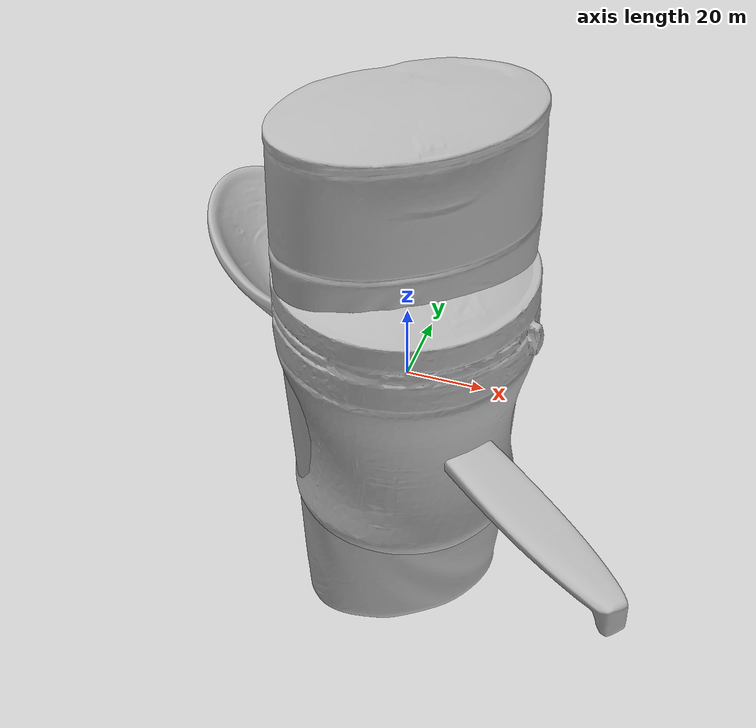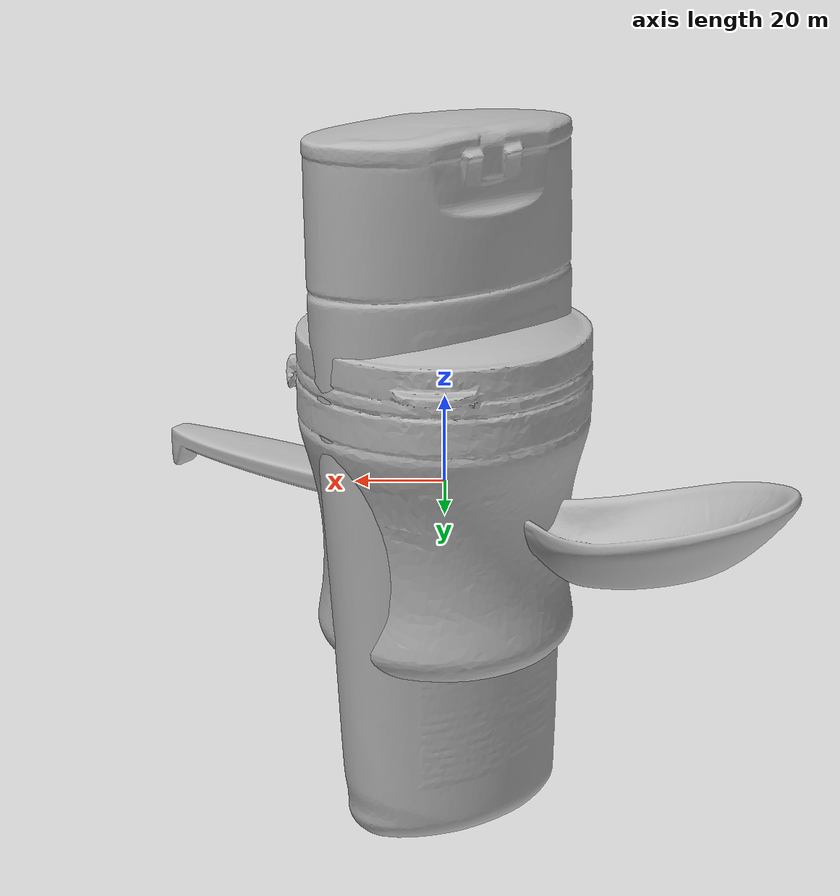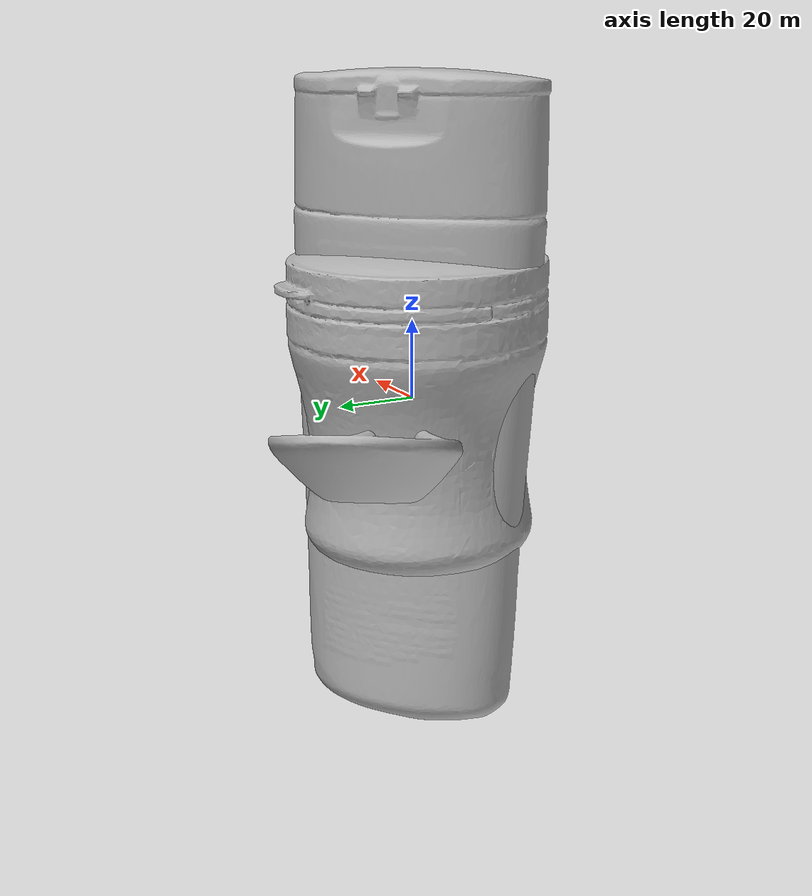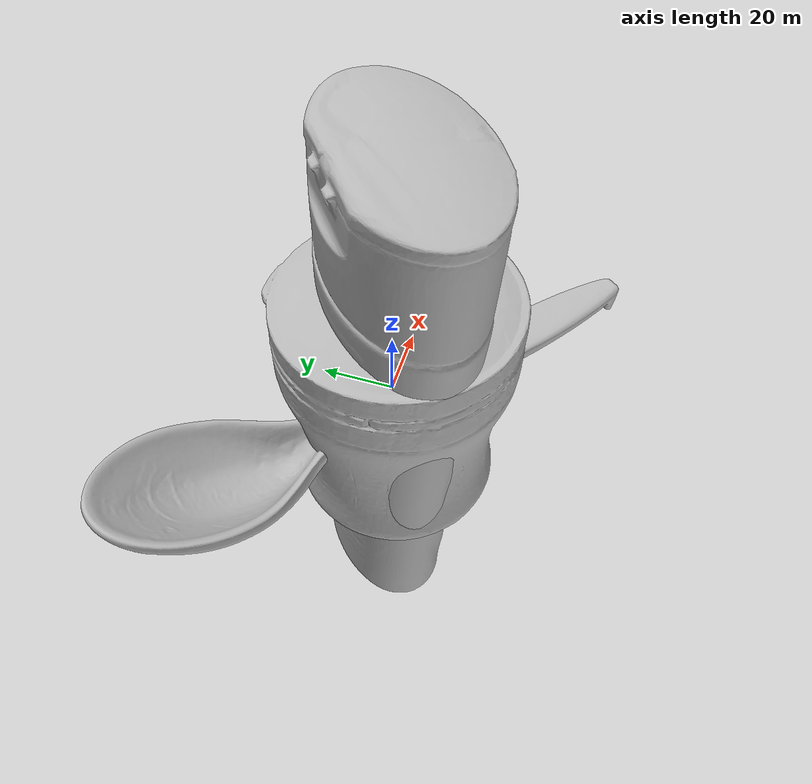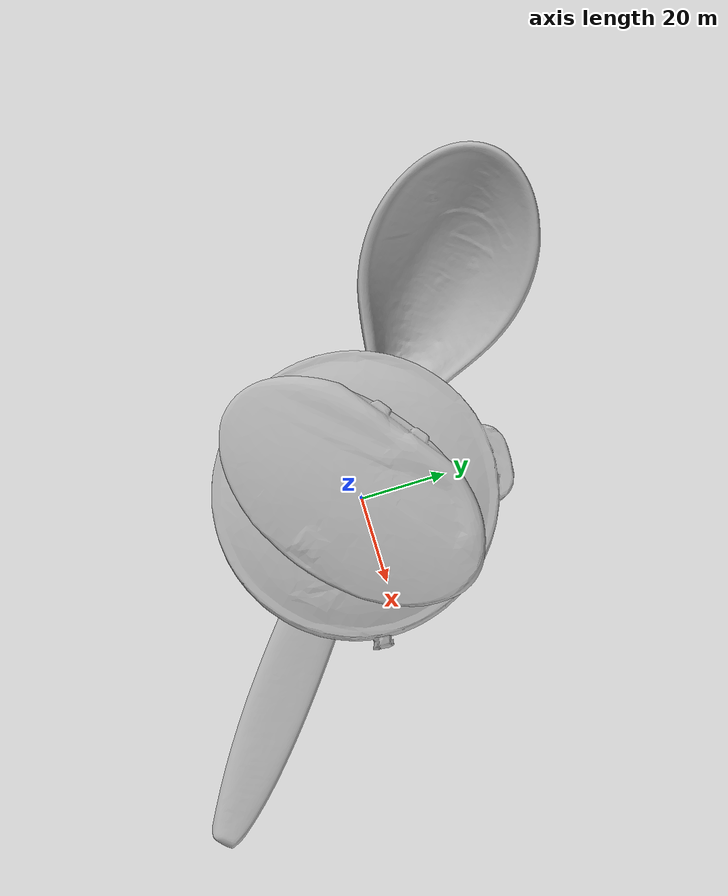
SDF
<sdf version="1.4">
 <world name="default">
  <light name="light1" type="point">
   <pose>0 0 1 0 0 0</pose>
   <diffuse>3 3 3 1</diffuse>
   <specular>3 3 3 1</specular>
  </light>
  <light name="light2" type="point">
   <pose>0 0.5 2 0 0 0</pose>
   <diffuse>1 1 1 1</diffuse>
   <specular>1 1 1 1</specular>
  </light>
  <light name="light3" type="point">
   <pose>0 0.5 2 0 0 0</pose>
   <diffuse>3 3 3 1</diffuse>
   <specular>3 3 3 1</specular>
  </light>
  <scene><ambient>0.7 0.7 0.7</ambient></scene>
  <model name="bottle1">
   <link name="link_bottle1">
    <collision name="default">
     <geometry>
      <mesh><uri>model://green_arrow/collision_meshes/collision.obj</uri><scale>1.0 1.0 1.0</scale></mesh>
     </geometry>
     <surface>
      <friction><ode><mu>0.5</mu><mu2>0.5</mu2></ode></friction>
      <contact><ode><max_vel>0</max_vel><min_depth>0.0001</min_depth><kp>1e8</kp></ode></contact>
     </surface>
    </collision>
    <visual name="default">
     <geometry>
      <mesh><uri>model://green_arrow/visual_meshes/visual.dae</uri><scale>1.0 1.0 1.0</scale></mesh>
     </geometry>
    </visual>
    <inertial>
     <mass>0.159866601228714</mass>
     <pose>0.0005358478520065546 -0.0008270691614598036 0.0022109695710241795 -0.0633227561078847 0.012984243694000861 0.6740794776591725</pose>
     <inertia>
      <ixx>0.00011596808</ixx>
      <iyy>0.00011579238</iyy>
      <izz>7.488036e-05</izz>
      <ixy>0</ixy>
      <ixz>0</ixz>
      <iyz>0</iyz>
     </inertia>
    </inertial>
   </link>
   <pose>0.26043111085891724 -0.36878401041030884 0.03903084620833397 0.0385179324675017 0.024628538978627088 -0.7648143716339704</pose>
  </model>
  <model name="bottle2">
   <link name="link_bottle2">
    <collision name="default">
     <geometry>
      <mesh><uri>model://conditioner/collision_meshes/collision.obj</uri><scale>1.0 1.0 1.0</scale></mesh>
     </geometry>
     <surface>
      <friction><ode><mu>0.5</mu><mu2>0.5</mu2></ode></friction>
      <contact><ode><max_vel>0</max_vel><min_depth>0.0001</min_depth><kp>1e8</kp></ode></contact>
     </surface>
    </collision>
    <visual name="default">
     <geometry>
      <mesh><uri>model://conditioner/visual_meshes/visual.dae</uri><scale>1.0 1.0 1.0</scale></mesh>
     </geometry>
    </visual>
    <inertial>
     <mass>0.1887805312871933</mass>
     <pose>-0.00055994390277192 -0.00017297487647738308 0.004359682556241751 -0.005038374268360293 0.015306043554332214 0.015072361860715313</pose>
     <inertia>
      <ixx>0.00041066532</ixx>
      <iyy>0.00043991112</iyy>
      <izz>6.3318876e-05</izz>
      <ixy>0</ixy>
      <ixz>0</ixz>
      <iyz>0</iyz>
     </inertia>
    </inertial>
   </link>
   <pose>-0.008189372718334198 0.23048584163188934 0.08122971653938293 0.03689226376037923 -0.01566002901696392 0.6311492611215708</pose>
  </model>
  <model name="silverware1">
   <link name="link_silverware1">
    <collision name="default">
     <geometry>
      <mesh><uri>model://doraemon_spoon/collision_meshes/collision.obj</uri><scale>1.0 1.0 1.0</scale></mesh>
     </geometry>
     <surface>
      <friction><ode><mu>0.5</mu><mu2>0.5</mu2></ode></friction>
      <contact><ode><max_vel>0</max_vel><min_depth>0.0001</min_depth><kp>1e8</kp></ode></contact>
     </surface>
    </collision>
    <visual name="default">
     <geometry>
      <mesh><uri>model://doraemon_spoon/visual_meshes/visual.dae</uri><scale>1.0 1.0 1.0</scale></mesh>
     </geometry>
    </visual>
    <inertial>
     <mass>0.029215902090072632</mass>
     <pose>-0.022165078669786453 -0.0006374581134878099 -0.003332544816657901 -0.009147069561506448 0.07380416816022378 -0.014123831282405222</pose>
     <inertia>
      <ixx>2.2884674e-06</ixx>
      <iyy>6.499588e-05</iyy>
      <izz>6.610089e-05</izz>
      <ixy>0</ixy>
      <ixz>0</ixz>
      <iyz>0</iyz>
     </inertia>
    </inertial>
   </link>
   <pose>0.06763787567615509 -0.08864385634660721 0.014954297803342342 -0.02826876489965539 -0.004539017224601746 -0.644945873218524</pose>
  </model>
  <model name="stationery1">
   <link name="link_stationery1">
    <collision name="default">
     <geometry>
      <mesh><uri>model://correction_fuid/collision_meshes/collision.obj</uri><scale>1.0 1.0 1.0</scale></mesh>
     </geometry>
     <surface>
      <friction><ode><mu>0.5</mu><mu2>0.5</mu2></ode></friction>
      <contact><ode><max_vel>0</max_vel><min_depth>0.0001</min_depth><kp>1e8</kp></ode></contact>
     </surface>
    </collision>
    <visual name="default">
     <geometry>
      <mesh><uri>model://correction_fuid/visual_meshes/visual.dae</uri><scale>1.0 1.0 1.0</scale></mesh>
     </geometry>
    </visual>
    <inertial>
     <mass>0.02664039097726345</mass>
     <pose>-0.00012557733862195164 -0.0009722907561808825 -0.001618212671019137 -0.010846611490809042 0.019488348158978066 -0.015992455472155966</pose>
     <inertia>
      <ixx>2.5801672e-05</ixx>
      <iyy>1.5615498e-06</iyy>
      <izz>2.6473212e-05</izz>
      <ixy>0</ixy>
      <ixz>0</ixz>
      <iyz>0</iyz>
     </inertia>
    </inertial>
   </link>
   <pose>0.036959804594516754 -0.11675061285495758 0.01703459955751896 0.15164838153279087 0.013930897499457308 -0.5748346003880548</pose>
  </model>
  <model name="bowl1">
   <link name="link_bowl1">
    <collision name="default">
     <geometry>
      <mesh><uri>model://doraemon_bowl/collision_meshes/collision.obj</uri><scale>1.0 1.0 1.0</scale></mesh>
     </geometry>
     <surface>
      <friction><ode><mu>0.5</mu><mu2>0.5</mu2></ode></friction>
      <contact><ode><max_vel>0</max_vel><min_depth>0.0001</min_depth><kp>1e8</kp></ode></contact>
     </surface>
    </collision>
    <visual name="default">
     <geometry>
      <mesh><uri>model://doraemon_bowl/visual_meshes/visual.dae</uri><scale>1.0 1.0 1.0</scale></mesh>
     </geometry>
    </visual>
    <inertial>
     <mass>0.0632677748799324</mass>
     <pose>-0.014629557728767395 0.00048571318620815873 -0.0020864882972091436 -0.005093978566849342 -0.10568406006641042 -0.026426380562233804</pose>
     <inertia>
      <ixx>8.773087e-05</ixx>
      <iyy>0.00011545301</iyy>
      <izz>0.00016985848</izz>
      <ixy>0</ixy>
      <ixz>0</ixz>
      <iyz>0</iyz>
     </inertia>
    </inertial>
   </link>
   <pose>0.22063308954238892 -0.1752440184354782 0.025905387476086617 0.008594650373858094 0.006348522912890305 0.2948013116196339</pose>
  </model>
  <model name="cup1">
   <link name="link_cup1">
    <collision name="default">
     <geometry>
      <mesh><uri>model://doraemon_cup/collision_meshes/collision.obj</uri><scale>1.0 1.0 1.0</scale></mesh>
     </geometry>
     <surface>
      <friction><ode><mu>0.5</mu><mu2>0.5</mu2></ode></friction>
      <contact><ode><max_vel>0</max_vel><min_depth>0.0001</min_depth><kp>1e8</kp></ode></contact>
     </surface>
    </collision>
    <visual name="default">
     <geometry>
      <mesh><uri>model://doraemon_cup/visual_meshes/visual.dae</uri><scale>1.0 1.0 1.0</scale></mesh>
     </geometry>
    </visual>
    <inertial>
     <mass>0.04278137534856796</mass>
     <pose>-0.0003292987239547074 -0.0016633577179163694 -0.0022522551007568836 0.19498548950287564 -0.013693938110122818 -0.3205458650037051</pose>
     <inertia>
      <ixx>5.8507427e-05</ixx>
      <iyy>5.6580026e-05</iyy>
      <izz>4.623892e-05</izz>
      <ixy>0</ixy>
      <ixz>0</ixz>
      <iyz>0</iyz>
     </inertia>
    </inertial>
   </link>
   <pose>-0.053711287677288055 0.13238783180713654 0.04623335227370262 -0.011354610562376993 -0.009305534590195876 -0.7548657827574765</pose>
  </model>
  <model name="plate1">
   <link name="link_plate1">
    <collision name="default">
     <geometry>
      <mesh><uri>model://hello_kitty_plate/collision_meshes/collision.obj</uri><scale>1.0 1.0 1.0</scale></mesh>
     </geometry>
     <surface>
      <friction><ode><mu>0.5</mu><mu2>0.5</mu2></ode></friction>
      <contact><ode><max_vel>0</max_vel><min_depth>0.0001</min_depth><kp>1e8</kp></ode></contact>
     </surface>
    </collision>
    <visual name="default">
     <geometry>
      <mesh><uri>model://hello_kitty_plate/visual_meshes/visual.dae</uri><scale>1.0 1.0 1.0</scale></mesh>
     </geometry>
    </visual>
    <inertial>
     <mass>0.03555070236325264</mass>
     <pose>0.0073143006302416325 0.0002893744967877865 -0.0027947186026722193 -0.00010431820965322355 -0.007054446463638022 -0.014449070801334592</pose>
     <inertia>
      <ixx>6.855243e-05</ixx>
      <iyy>0.00012937908</iyy>
      <izz>0.0001964492</izz>
      <ixy>0</ixy>
      <ixz>0</ixz>
      <iyz>0</iyz>
     </inertia>
    </inertial>
   </link>
   <pose>0.18429601192474365 -0.08838241547346115 0.04372081160545349 -0.19834049560207015 -0.3595017243501206 -0.819787938035621</pose>
  </model>
  <model name="box4">
   <link name="link_box4">
    <collision name="default">
     <geometry>
      <mesh><uri>model://wooden_puzzle1/collision_meshes/collision.obj</uri><scale>1.0 1.0 1.0</scale></mesh>
     </geometry>
     <surface>
      <friction><ode><mu>0.5</mu><mu2>0.5</mu2></ode></friction>
      <contact><ode><max_vel>0</max_vel><min_depth>0.0001</min_depth><kp>1e8</kp></ode></contact>
     </surface>
    </collision>
    <visual name="default">
     <geometry>
      <mesh><uri>model://wooden_puzzle1/visual_meshes/visual.dae</uri><scale>1.0 1.0 1.0</scale></mesh>
     </geometry>
    </visual>
    <inertial>
     <mass>0.03278602659702301</mass>
     <pose>-0.00017350679263472557 7.972260937094688e-05 -9.191554272547364e-05 -0.07784358361794479 -0.263610796923839 -0.5528741327723476</pose>
     <inertia>
      <ixx>6.1858273e-06</ixx>
      <iyy>6.0667485e-06</iyy>
      <izz>6.139123e-06</izz>
      <ixy>0</ixy>
      <ixz>0</ixz>
      <iyz>0</iyz>
     </inertia>
    </inertial>
   </link>
   <pose>0.1284944713115692 -0.16105975210666656 0.016802020370960236 0.010512528104193489 -0.009453846719245276 2.758124878424798</pose>
  </model>
  <physics type="ode">
   <max_contacts>50</max_contacts>
   <ode>
    <solver><type>quick</type><iters>75</iters></solver>
    <constraints>
     <contact_max_correcting_vel>0</contact_max_correcting_vel>
     <contact_surface_layer>0</contact_surface_layer>
    </constraints>
   </ode>
  </physics>
 </world>
</sdf>
